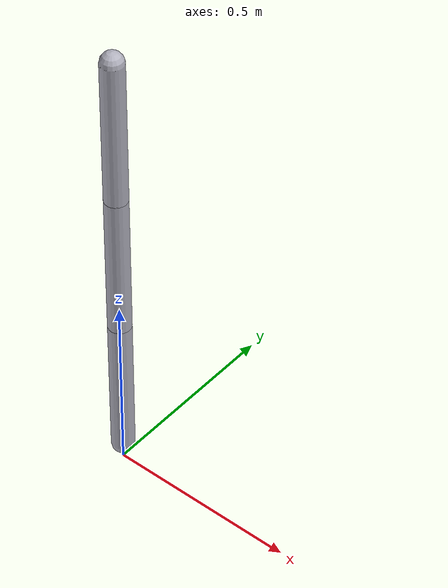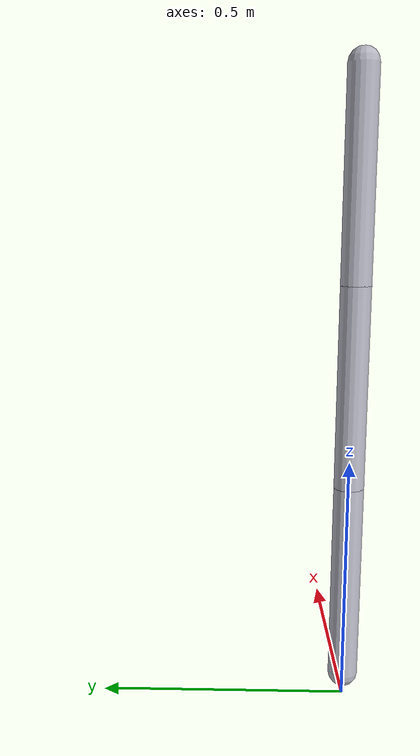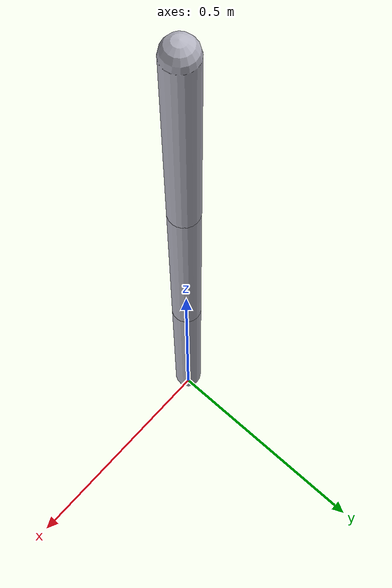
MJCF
<mujoco model="acrobot3">
  <!-- angles in radians; gravity along -z so motion is in the x–z plane -->
  <compiler angle="radian"/>
  <option gravity="0 0 -9.81" timestep="0.0001" integrator="RK4"/>

  <default>
    <!-- Don't limit revolute joints unless you really need to -->
    <joint type="hinge" limited="false" damping="0.01" armature="0.002"/>
    <geom type="capsule" size="0.03" rgba="0.7 0.7 0.75 1" density="800" />
    <motor ctrllimited="true" ctrlrange="-12 12" gear="1"/>
  </default>

  <worldbody>
    <!-- Fixed base -->
    <body name="base" pos="0 0 0.05">
      <!-- Link 1 (length 0.4 along +z) -->
      <body name="link1" pos="0 0 0">
        <joint name="j1" axis="0 1 0"/>  <!-- rotate about +y -->
        <!-- Inertial at center of the rod (approx for a solid cylinder) -->
        <inertial pos="0 0 0.2" mass="1.0" diaginertia="0.01356 0.01356 0.00045"/>
        <geom fromto="0 0 0  0 0 0.4"/>

        <!-- Link 2 attaches at end of Link 1 -->
        <body name="link2" pos="0 0 0.4">
          <joint name="j2" axis="0 1 0"/>
          <inertial pos="0 0 0.2" mass="1.0" diaginertia="0.01356 0.01356 0.00045"/>
          <geom fromto="0 0 0  0 0 0.4"/>

          <!-- Link 3 attaches at end of Link 2 -->
          <body name="link3" pos="0 0 0.4">
            <joint name="j3" axis="0 1 0"/>
            <inertial pos="0 0 0.2" mass="1.0" diaginertia="0.01356 0.01356 0.00045"/>
            <geom fromto="0 0 0  0 0 0.4"/>
            <!-- a site at the tip just for visualization/debugging -->
            <site name="tip" pos="0 0 0.4" size="0.01" rgba="0.9 0.3 0.3 1"/>
          </body>
        </body>
      </body>
    </body>
  </worldbody>

  <!-- Only the last joint is actuated: underactuated 3-link acrobot -->
  <actuator>
    <motor name="u3" joint="j3"/>
  </actuator>

  <!-- Sensors are handy while debugging -->
  <sensor>
    <jointpos joint="j1"/>
    <jointvel joint="j1"/>
    <jointpos joint="j2"/>
    <jointvel joint="j2"/>
    <jointpos joint="j3"/>
    <jointvel joint="j3"/>
  </sensor>

  <!-- Start slightly perturbed so it doesn't sit perfectly vertical -->
  <keyframe>
    <key name="init" qpos="3.00 0.10 -0.10" qvel="0 0 0"/>
  </keyframe>
</mujoco>
